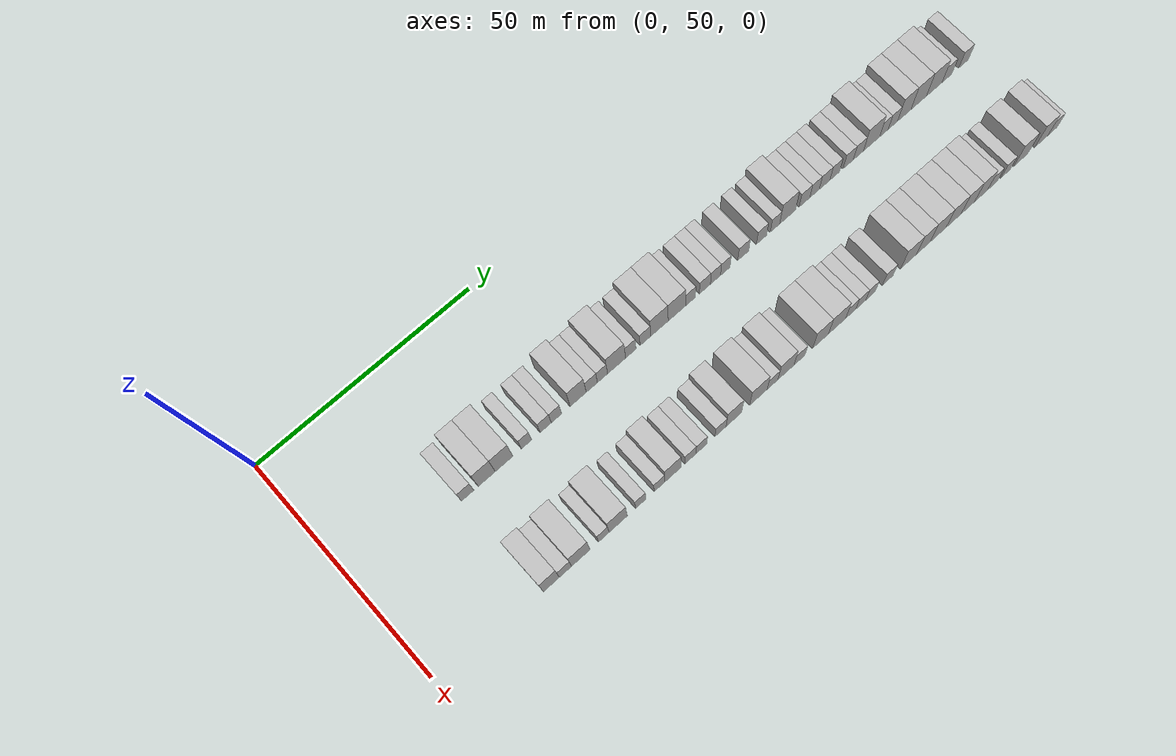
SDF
<sdf version="1.6">
 <world name="default">
  <model name="building_66">
   <static>1</static>
   <pose>25.0000 74.7468 0 0.000000 0.000000 0.000000</pose>
   <link name="link">
    <pose>0 0 3.00 0 0 0</pose>
    <collision name="collision"><geometry><box><size>10.0000 2.9044 6.0000</size></box></geometry></collision>
    <visual name="visual">
     <cast_shadows>0</cast_shadows>
     <geometry><box><size>10.0000 2.9044 6.0000</size></box></geometry>
     <material>
      <script>
       <uri>model://HANNAS_wall/materials/scripts</uri>
       <uri>model://HANNAS_wall/materials/textures</uri>
       <name>vrc/HANNAS_wall</name>
      </script>
     </material>
    </visual>
   </link>
  </model>
  <model name="building_67">
   <static>1</static>
   <pose>25.0000 79.1822 0 0.000000 0.000000 0.000000</pose>
   <link name="link">
    <pose>0 0 4.50 0 0 0</pose>
    <collision name="collision"><geometry><box><size>10.0000 3.9665 9.0000</size></box></geometry></collision>
    <visual name="visual">
     <cast_shadows>0</cast_shadows>
     <geometry><box><size>10.0000 3.9665 9.0000</size></box></geometry>
     <material>
      <script>
       <uri>model://HANNAS_wall/materials/scripts</uri>
       <uri>model://HANNAS_wall/materials/textures</uri>
       <name>vrc/HANNAS_wall</name>
      </script>
     </material>
    </visual>
   </link>
  </model>
  <model name="building_68">
   <static>1</static>
   <pose>25.0000 83.2486 0 0.000000 0.000000 0.000000</pose>
   <link name="link">
    <pose>0 0 4.50 0 0 0</pose>
    <collision name="collision"><geometry><box><size>10.0000 4.1663 9.0000</size></box></geometry></collision>
    <visual name="visual">
     <cast_shadows>0</cast_shadows>
     <geometry><box><size>10.0000 4.1663 9.0000</size></box></geometry>
     <material>
      <script>
       <uri>model://HANNAS_wall/materials/scripts</uri>
       <uri>model://HANNAS_wall/materials/textures</uri>
       <name>vrc/HANNAS_wall</name>
      </script>
     </material>
    </visual>
   </link>
  </model>
  <model name="building_69">
   <static>1</static>
   <pose>25.0000 88.5705 0 0.000000 0.000000 0.000000</pose>
   <link name="link">
    <pose>0 0 3.00 0 0 0</pose>
    <collision name="collision"><geometry><box><size>10.0000 2.4775 6.0000</size></box></geometry></collision>
    <visual name="visual">
     <cast_shadows>0</cast_shadows>
     <geometry><box><size>10.0000 2.4775 6.0000</size></box></geometry>
     <material>
      <script>
       <uri>model://HANNAS_wall/materials/scripts</uri>
       <uri>model://HANNAS_wall/materials/textures</uri>
       <name>vrc/HANNAS_wall</name>
      </script>
     </material>
    </visual>
   </link>
  </model>
  <model name="building_70">
   <static>1</static>
   <pose>25.0000 93.1546 0 0.000000 0.000000 0.000000</pose>
   <link name="link">
    <pose>0 0 3.00 0 0 0</pose>
    <collision name="collision"><geometry><box><size>10.0000 2.6907 6.0000</size></box></geometry></collision>
    <visual name="visual">
     <cast_shadows>0</cast_shadows>
     <geometry><box><size>10.0000 2.6907 6.0000</size></box></geometry>
     <material>
      <script>
       <uri>model://HANNAS_wall/materials/scripts</uri>
       <uri>model://HANNAS_wall/materials/textures</uri>
       <name>vrc/HANNAS_wall</name>
      </script>
     </material>
    </visual>
   </link>
  </model>
  <model name="building_71">
   <static>1</static>
   <pose>25.0000 95.7570 0 0.000000 0.000000 0.000000</pose>
   <link name="link">
    <pose>0 0 3.00 0 0 0</pose>
    <collision name="collision"><geometry><box><size>10.0000 2.5140 6.0000</size></box></geometry></collision>
    <visual name="visual">
     <cast_shadows>0</cast_shadows>
     <geometry><box><size>10.0000 2.5140 6.0000</size></box></geometry>
     <material>
      <script>
       <uri>model://HANNAS_wall/materials/scripts</uri>
       <uri>model://HANNAS_wall/materials/textures</uri>
       <name>vrc/HANNAS_wall</name>
      </script>
     </material>
    </visual>
   </link>
  </model>
  <model name="building_72">
   <static>1</static>
   <pose>25.0000 100.9789 0 0.000000 0.000000 0.000000</pose>
   <link name="link">
    <pose>0 0 4.50 0 0 0</pose>
    <collision name="collision"><geometry><box><size>10.0000 3.9297 9.0000</size></box></geometry></collision>
    <visual name="visual">
     <cast_shadows>0</cast_shadows>
     <geometry><box><size>10.0000 3.9297 9.0000</size></box></geometry>
     <material>
      <script>
       <uri>model://HANNAS_wall/materials/scripts</uri>
       <uri>model://HANNAS_wall/materials/textures</uri>
       <name>vrc/HANNAS_wall</name>
      </script>
     </material>
    </visual>
   </link>
  </model>
  <model name="building_73">
   <static>1</static>
   <pose>25.0000 104.3171 0 0.000000 0.000000 0.000000</pose>
   <link name="link">
    <pose>0 0 3.00 0 0 0</pose>
    <collision name="collision"><geometry><box><size>10.0000 2.7467 6.0000</size></box></geometry></collision>
    <visual name="visual">
     <cast_shadows>0</cast_shadows>
     <geometry><box><size>10.0000 2.7467 6.0000</size></box></geometry>
     <material>
      <script>
       <uri>model://HANNAS_wall/materials/scripts</uri>
       <uri>model://HANNAS_wall/materials/textures</uri>
       <name>vrc/HANNAS_wall</name>
      </script>
     </material>
    </visual>
   </link>
  </model>
  <model name="building_74">
   <static>1</static>
   <pose>25.0000 106.9308 0 0.000000 0.000000 0.000000</pose>
   <link name="link">
    <pose>0 0 3.00 0 0 0</pose>
    <collision name="collision"><geometry><box><size>10.0000 2.4807 6.0000</size></box></geometry></collision>
    <visual name="visual">
     <cast_shadows>0</cast_shadows>
     <geometry><box><size>10.0000 2.4807 6.0000</size></box></geometry>
     <material>
      <script>
       <uri>model://HANNAS_wall/materials/scripts</uri>
       <uri>model://HANNAS_wall/materials/textures</uri>
       <name>vrc/HANNAS_wall</name>
      </script>
     </material>
    </visual>
   </link>
  </model>
  <model name="building_75">
   <static>1</static>
   <pose>25.0000 110.3880 0 0.000000 0.000000 0.000000</pose>
   <link name="link">
    <pose>0 0 4.50 0 0 0</pose>
    <collision name="collision"><geometry><box><size>10.0000 4.4338 9.0000</size></box></geometry></collision>
    <visual name="visual">
     <cast_shadows>0</cast_shadows>
     <geometry><box><size>10.0000 4.4338 9.0000</size></box></geometry>
     <material>
      <script>
       <uri>model://HANNAS_wall/materials/scripts</uri>
       <uri>model://HANNAS_wall/materials/textures</uri>
       <name>vrc/HANNAS_wall</name>
      </script>
     </material>
    </visual>
   </link>
  </model>
  <model name="building_76">
   <static>1</static>
   <pose>25.0000 113.9104 0 0.000000 0.000000 0.000000</pose>
   <link name="link">
    <pose>0 0 3.00 0 0 0</pose>
    <collision name="collision"><geometry><box><size>10.0000 2.6109 6.0000</size></box></geometry></collision>
    <visual name="visual">
     <cast_shadows>0</cast_shadows>
     <geometry><box><size>10.0000 2.6109 6.0000</size></box></geometry>
     <material>
      <script>
       <uri>model://HANNAS_wall/materials/scripts</uri>
       <uri>model://HANNAS_wall/materials/textures</uri>
       <name>vrc/HANNAS_wall</name>
      </script>
     </material>
    </visual>
   </link>
  </model>
  <model name="building_77">
   <static>1</static>
   <pose>25.0000 117.5354 0 0.000000 0.000000 0.000000</pose>
   <link name="link">
    <pose>0 0 3.00 0 0 0</pose>
    <collision name="collision"><geometry><box><size>10.0000 2.6390 6.0000</size></box></geometry></collision>
    <visual name="visual">
     <cast_shadows>0</cast_shadows>
     <geometry><box><size>10.0000 2.6390 6.0000</size></box></geometry>
     <material>
      <script>
       <uri>model://HANNAS_wall/materials/scripts</uri>
       <uri>model://HANNAS_wall/materials/textures</uri>
       <name>vrc/HANNAS_wall</name>
      </script>
     </material>
    </visual>
   </link>
  </model>
  <model name="building_78">
   <static>1</static>
   <pose>25.0000 121.0596 0 0.000000 0.000000 0.000000</pose>
   <link name="link">
    <pose>0 0 4.50 0 0 0</pose>
    <collision name="collision"><geometry><box><size>10.0000 4.4094 9.0000</size></box></geometry></collision>
    <visual name="visual">
     <cast_shadows>0</cast_shadows>
     <geometry><box><size>10.0000 4.4094 9.0000</size></box></geometry>
     <material>
      <script>
       <uri>model://HANNAS_wall/materials/scripts</uri>
       <uri>model://HANNAS_wall/materials/textures</uri>
       <name>vrc/HANNAS_wall</name>
      </script>
     </material>
    </visual>
   </link>
  </model>
  <model name="building_79">
   <static>1</static>
   <pose>25.0000 125.4684 0 0.000000 0.000000 0.000000</pose>
   <link name="link">
    <pose>0 0 4.50 0 0 0</pose>
    <collision name="collision"><geometry><box><size>10.0000 4.4081 9.0000</size></box></geometry></collision>
    <visual name="visual">
     <cast_shadows>0</cast_shadows>
     <geometry><box><size>10.0000 4.4081 9.0000</size></box></geometry>
     <material>
      <script>
       <uri>model://HANNAS_wall/materials/scripts</uri>
       <uri>model://HANNAS_wall/materials/textures</uri>
       <name>vrc/HANNAS_wall</name>
      </script>
     </material>
    </visual>
   </link>
  </model>
  <model name="building_80">
   <static>1</static>
   <pose>25.0000 128.9267 0 0.000000 0.000000 0.000000</pose>
   <link name="link">
    <pose>0 0 3.00 0 0 0</pose>
    <collision name="collision"><geometry><box><size>10.0000 2.5086 6.0000</size></box></geometry></collision>
    <visual name="visual">
     <cast_shadows>0</cast_shadows>
     <geometry><box><size>10.0000 2.5086 6.0000</size></box></geometry>
     <material>
      <script>
       <uri>model://HANNAS_wall/materials/scripts</uri>
       <uri>model://HANNAS_wall/materials/textures</uri>
       <name>vrc/HANNAS_wall</name>
      </script>
     </material>
    </visual>
   </link>
  </model>
  <model name="building_81">
   <static>1</static>
   <pose>25.0000 132.6072 0 0.000000 0.000000 0.000000</pose>
   <link name="link">
    <pose>0 0 3.00 0 0 0</pose>
    <collision name="collision"><geometry><box><size>10.0000 2.8524 6.0000</size></box></geometry></collision>
    <visual name="visual">
     <cast_shadows>0</cast_shadows>
     <geometry><box><size>10.0000 2.8524 6.0000</size></box></geometry>
     <material>
      <script>
       <uri>model://HANNAS_wall/materials/scripts</uri>
       <uri>model://HANNAS_wall/materials/textures</uri>
       <name>vrc/HANNAS_wall</name>
      </script>
     </material>
    </visual>
   </link>
  </model>
  <model name="building_82">
   <static>1</static>
   <pose>25.0000 135.3278 0 0.000000 0.000000 0.000000</pose>
   <link name="link">
    <pose>0 0 3.00 0 0 0</pose>
    <collision name="collision"><geometry><box><size>10.0000 2.5889 6.0000</size></box></geometry></collision>
    <visual name="visual">
     <cast_shadows>0</cast_shadows>
     <geometry><box><size>10.0000 2.5889 6.0000</size></box></geometry>
     <material>
      <script>
       <uri>model://HANNAS_wall/materials/scripts</uri>
       <uri>model://HANNAS_wall/materials/textures</uri>
       <name>vrc/HANNAS_wall</name>
      </script>
     </material>
    </visual>
   </link>
  </model>
  <model name="building_83">
   <static>1</static>
   <pose>25.0000 137.8538 0 0.000000 0.000000 0.000000</pose>
   <link name="link">
    <pose>0 0 3.00 0 0 0</pose>
    <collision name="collision"><geometry><box><size>10.0000 2.4631 6.0000</size></box></geometry></collision>
    <visual name="visual">
     <cast_shadows>0</cast_shadows>
     <geometry><box><size>10.0000 2.4631 6.0000</size></box></geometry>
     <material>
      <script>
       <uri>model://HANNAS_wall/materials/scripts</uri>
       <uri>model://HANNAS_wall/materials/textures</uri>
       <name>vrc/HANNAS_wall</name>
      </script>
     </material>
    </visual>
   </link>
  </model>
  <model name="building_84">
   <static>1</static>
   <pose>25.0000 142.5215 0 0.000000 0.000000 0.000000</pose>
   <link name="link">
    <pose>0 0 3.00 0 0 0</pose>
    <collision name="collision"><geometry><box><size>10.0000 2.8722 6.0000</size></box></geometry></collision>
    <visual name="visual">
     <cast_shadows>0</cast_shadows>
     <geometry><box><size>10.0000 2.8722 6.0000</size></box></geometry>
     <material>
      <script>
       <uri>model://HANNAS_wall/materials/scripts</uri>
       <uri>model://HANNAS_wall/materials/textures</uri>
       <name>vrc/HANNAS_wall</name>
      </script>
     </material>
    </visual>
   </link>
  </model>
  <model name="building_85">
   <static>1</static>
   <pose>25.0000 147.2923 0 0.000000 0.000000 0.000000</pose>
   <link name="link">
    <pose>0 0 3.00 0 0 0</pose>
    <collision name="collision"><geometry><box><size>10.0000 2.6695 6.0000</size></box></geometry></collision>
    <visual name="visual">
     <cast_shadows>0</cast_shadows>
     <geometry><box><size>10.0000 2.6695 6.0000</size></box></geometry>
     <material>
      <script>
       <uri>model://HANNAS_wall/materials/scripts</uri>
       <uri>model://HANNAS_wall/materials/textures</uri>
       <name>vrc/HANNAS_wall</name>
      </script>
     </material>
    </visual>
   </link>
  </model>
  <model name="building_86">
   <static>1</static>
   <pose>25.0000 150.8639 0 0.000000 0.000000 0.000000</pose>
   <link name="link">
    <pose>0 0 3.00 0 0 0</pose>
    <collision name="collision"><geometry><box><size>10.0000 2.4738 6.0000</size></box></geometry></collision>
    <visual name="visual">
     <cast_shadows>0</cast_shadows>
     <geometry><box><size>10.0000 2.4738 6.0000</size></box></geometry>
     <material>
      <script>
       <uri>model://HANNAS_wall/materials/scripts</uri>
       <uri>model://HANNAS_wall/materials/textures</uri>
       <name>vrc/HANNAS_wall</name>
      </script>
     </material>
    </visual>
   </link>
  </model>
  <model name="building_87">
   <static>1</static>
   <pose>25.0000 154.1984 0 0.000000 0.000000 0.000000</pose>
   <link name="link">
    <pose>0 0 4.50 0 0 0</pose>
    <collision name="collision"><geometry><box><size>10.0000 4.1952 9.0000</size></box></geometry></collision>
    <visual name="visual">
     <cast_shadows>0</cast_shadows>
     <geometry><box><size>10.0000 4.1952 9.0000</size></box></geometry>
     <material>
      <script>
       <uri>model://HANNAS_wall/materials/scripts</uri>
       <uri>model://HANNAS_wall/materials/textures</uri>
       <name>vrc/HANNAS_wall</name>
      </script>
     </material>
    </visual>
   </link>
  </model>
  <model name="building_88">
   <static>1</static>
   <pose>25.0000 158.7002 0 0.000000 0.000000 0.000000</pose>
   <link name="link">
    <pose>0 0 3.00 0 0 0</pose>
    <collision name="collision"><geometry><box><size>10.0000 2.8086 6.0000</size></box></geometry></collision>
    <visual name="visual">
     <cast_shadows>0</cast_shadows>
     <geometry><box><size>10.0000 2.8086 6.0000</size></box></geometry>
     <material>
      <script>
       <uri>model://HANNAS_wall/materials/scripts</uri>
       <uri>model://HANNAS_wall/materials/textures</uri>
       <name>vrc/HANNAS_wall</name>
      </script>
     </material>
    </visual>
   </link>
  </model>
  <model name="building_89">
   <static>1</static>
   <pose>25.0000 161.3780 0 0.000000 0.000000 0.000000</pose>
   <link name="link">
    <pose>0 0 3.00 0 0 0</pose>
    <collision name="collision"><geometry><box><size>10.0000 2.5471 6.0000</size></box></geometry></collision>
    <visual name="visual">
     <cast_shadows>0</cast_shadows>
     <geometry><box><size>10.0000 2.5471 6.0000</size></box></geometry>
     <material>
      <script>
       <uri>model://HANNAS_wall/materials/scripts</uri>
       <uri>model://HANNAS_wall/materials/textures</uri>
       <name>vrc/HANNAS_wall</name>
      </script>
     </material>
    </visual>
   </link>
  </model>
  <model name="building_90">
   <static>1</static>
   <pose>25.0000 164.1032 0 0.000000 0.000000 0.000000</pose>
   <link name="link">
    <pose>0 0 3.00 0 0 0</pose>
    <collision name="collision"><geometry><box><size>10.0000 2.9033 6.0000</size></box></geometry></collision>
    <visual name="visual">
     <cast_shadows>0</cast_shadows>
     <geometry><box><size>10.0000 2.9033 6.0000</size></box></geometry>
     <material>
      <script>
       <uri>model://HANNAS_wall/materials/scripts</uri>
       <uri>model://HANNAS_wall/materials/textures</uri>
       <name>vrc/HANNAS_wall</name>
      </script>
     </material>
    </visual>
   </link>
  </model>
  <model name="building_91">
   <static>1</static>
   <pose>25.0000 166.8513 0 0.000000 0.000000 0.000000</pose>
   <link name="link">
    <pose>0 0 3.00 0 0 0</pose>
    <collision name="collision"><geometry><box><size>10.0000 2.5929 6.0000</size></box></geometry></collision>
    <visual name="visual">
     <cast_shadows>0</cast_shadows>
     <geometry><box><size>10.0000 2.5929 6.0000</size></box></geometry>
     <material>
      <script>
       <uri>model://HANNAS_wall/materials/scripts</uri>
       <uri>model://HANNAS_wall/materials/textures</uri>
       <name>vrc/HANNAS_wall</name>
      </script>
     </material>
    </visual>
   </link>
  </model>
  <model name="building_92">
   <static>1</static>
   <pose>25.0000 170.5384 0 0.000000 0.000000 0.000000</pose>
   <link name="link">
    <pose>0 0 3.00 0 0 0</pose>
    <collision name="collision"><geometry><box><size>10.0000 2.7811 6.0000</size></box></geometry></collision>
    <visual name="visual">
     <cast_shadows>0</cast_shadows>
     <geometry><box><size>10.0000 2.7811 6.0000</size></box></geometry>
     <material>
      <script>
       <uri>model://HANNAS_wall/materials/scripts</uri>
       <uri>model://HANNAS_wall/materials/textures</uri>
       <name>vrc/HANNAS_wall</name>
      </script>
     </material>
    </visual>
   </link>
  </model>
  <model name="building_93">
   <static>1</static>
   <pose>25.0000 173.3118 0 0.000000 0.000000 0.000000</pose>
   <link name="link">
    <pose>0 0 3.00 0 0 0</pose>
    <collision name="collision"><geometry><box><size>10.0000 2.7658 6.0000</size></box></geometry></collision>
    <visual name="visual">
     <cast_shadows>0</cast_shadows>
     <geometry><box><size>10.0000 2.7658 6.0000</size></box></geometry>
     <material>
      <script>
       <uri>model://HANNAS_wall/materials/scripts</uri>
       <uri>model://HANNAS_wall/materials/textures</uri>
       <name>vrc/HANNAS_wall</name>
      </script>
     </material>
    </visual>
   </link>
  </model>
  <model name="building_94">
   <static>1</static>
   <pose>25.0000 176.9208 0 0.000000 0.000000 0.000000</pose>
   <link name="link">
    <pose>0 0 4.50 0 0 0</pose>
    <collision name="collision"><geometry><box><size>10.0000 4.4520 9.0000</size></box></geometry></collision>
    <visual name="visual">
     <cast_shadows>0</cast_shadows>
     <geometry><box><size>10.0000 4.4520 9.0000</size></box></geometry>
     <material>
      <script>
       <uri>model://HANNAS_wall/materials/scripts</uri>
       <uri>model://HANNAS_wall/materials/textures</uri>
       <name>vrc/HANNAS_wall</name>
      </script>
     </material>
    </visual>
   </link>
  </model>
  <model name="building_95">
   <static>1</static>
   <pose>25.0000 180.3477 0 0.000000 0.000000 0.000000</pose>
   <link name="link">
    <pose>0 0 3.00 0 0 0</pose>
    <collision name="collision"><geometry><box><size>10.0000 2.4019 6.0000</size></box></geometry></collision>
    <visual name="visual">
     <cast_shadows>0</cast_shadows>
     <geometry><box><size>10.0000 2.4019 6.0000</size></box></geometry>
     <material>
      <script>
       <uri>model://HANNAS_wall/materials/scripts</uri>
       <uri>model://HANNAS_wall/materials/textures</uri>
       <name>vrc/HANNAS_wall</name>
      </script>
     </material>
    </visual>
   </link>
  </model>
  <model name="building_96">
   <static>1</static>
   <pose>25.0000 182.8537 0 0.000000 0.000000 0.000000</pose>
   <link name="link">
    <pose>0 0 3.00 0 0 0</pose>
    <collision name="collision"><geometry><box><size>10.0000 2.6103 6.0000</size></box></geometry></collision>
    <visual name="visual">
     <cast_shadows>0</cast_shadows>
     <geometry><box><size>10.0000 2.6103 6.0000</size></box></geometry>
     <material>
      <script>
       <uri>model://HANNAS_wall/materials/scripts</uri>
       <uri>model://HANNAS_wall/materials/textures</uri>
       <name>vrc/HANNAS_wall</name>
      </script>
     </material>
    </visual>
   </link>
  </model>
  <model name="building_97">
   <static>1</static>
   <pose>25.0000 186.0379 0 0.000000 0.000000 0.000000</pose>
   <link name="link">
    <pose>0 0 4.50 0 0 0</pose>
    <collision name="collision"><geometry><box><size>10.0000 3.7581 9.0000</size></box></geometry></collision>
    <visual name="visual">
     <cast_shadows>0</cast_shadows>
     <geometry><box><size>10.0000 3.7581 9.0000</size></box></geometry>
     <material>
      <script>
       <uri>model://HANNAS_wall/materials/scripts</uri>
       <uri>model://HANNAS_wall/materials/textures</uri>
       <name>vrc/HANNAS_wall</name>
      </script>
     </material>
    </visual>
   </link>
  </model>
  <model name="building_98">
   <static>1</static>
   <pose>25.0000 190.1003 0 0.000000 0.000000 0.000000</pose>
   <link name="link">
    <pose>0 0 4.50 0 0 0</pose>
    <collision name="collision"><geometry><box><size>10.0000 4.3667 9.0000</size></box></geometry></collision>
    <visual name="visual">
     <cast_shadows>0</cast_shadows>
     <geometry><box><size>10.0000 4.3667 9.0000</size></box></geometry>
     <material>
      <script>
       <uri>model://HANNAS_wall/materials/scripts</uri>
       <uri>model://HANNAS_wall/materials/textures</uri>
       <name>vrc/HANNAS_wall</name>
      </script>
     </material>
    </visual>
   </link>
  </model>
  <model name="building_99">
   <static>1</static>
   <pose>25.0000 194.4978 0 0.000000 0.000000 0.000000</pose>
   <link name="link">
    <pose>0 0 4.50 0 0 0</pose>
    <collision name="collision"><geometry><box><size>10.0000 4.4283 9.0000</size></box></geometry></collision>
    <visual name="visual">
     <cast_shadows>0</cast_shadows>
     <geometry><box><size>10.0000 4.4283 9.0000</size></box></geometry>
     <material>
      <script>
       <uri>model://HANNAS_wall/materials/scripts</uri>
       <uri>model://HANNAS_wall/materials/textures</uri>
       <name>vrc/HANNAS_wall</name>
      </script>
     </material>
    </visual>
   </link>
  </model>
  <model name="building_100">
   <static>1</static>
   <pose>25.0000 198.1069 0 0.000000 0.000000 0.000000</pose>
   <link name="link">
    <pose>0 0 3.00 0 0 0</pose>
    <collision name="collision"><geometry><box><size>10.0000 2.7899 6.0000</size></box></geometry></collision>
    <visual name="visual">
     <cast_shadows>0</cast_shadows>
     <geometry><box><size>10.0000 2.7899 6.0000</size></box></geometry>
     <material>
      <script>
       <uri>model://HANNAS_wall/materials/scripts</uri>
       <uri>model://HANNAS_wall/materials/textures</uri>
       <name>vrc/HANNAS_wall</name>
      </script>
     </material>
    </visual>
   </link>
  </model>
  <model name="building_101">
   <static>1</static>
   <pose>25.0000 202.8873 0 0.000000 0.000000 0.000000</pose>
   <link name="link">
    <pose>0 0 3.00 0 0 0</pose>
    <collision name="collision"><geometry><box><size>10.0000 2.7710 6.0000</size></box></geometry></collision>
    <visual name="visual">
     <cast_shadows>0</cast_shadows>
     <geometry><box><size>10.0000 2.7710 6.0000</size></box></geometry>
     <material>
      <script>
       <uri>model://HANNAS_wall/materials/scripts</uri>
       <uri>model://HANNAS_wall/materials/textures</uri>
       <name>vrc/HANNAS_wall</name>
      </script>
     </material>
    </visual>
   </link>
  </model>
  <model name="building_174">
   <static>1</static>
   <pose>47.0000 75.4648 0 0.000000 0.000000 0.000000</pose>
   <link name="link">
    <pose>0 0 4.50 0 0 0</pose>
    <collision name="collision"><geometry><box><size>10.0000 3.6805 9.0000</size></box></geometry></collision>
    <visual name="visual">
     <cast_shadows>0</cast_shadows>
     <geometry><box><size>10.0000 3.6805 9.0000</size></box></geometry>
     <material>
      <script>
       <uri>model://HANNAS_wall/materials/scripts</uri>
       <uri>model://HANNAS_wall/materials/textures</uri>
       <name>vrc/HANNAS_wall</name>
      </script>
     </material>
    </visual>
   </link>
  </model>
  <model name="building_175">
   <static>1</static>
   <pose>47.0000 78.7198 0 0.000000 0.000000 0.000000</pose>
   <link name="link">
    <pose>0 0 3.00 0 0 0</pose>
    <collision name="collision"><geometry><box><size>10.0000 2.8295 6.0000</size></box></geometry></collision>
    <visual name="visual">
     <cast_shadows>0</cast_shadows>
     <geometry><box><size>10.0000 2.8295 6.0000</size></box></geometry>
     <material>
      <script>
       <uri>model://HANNAS_wall/materials/scripts</uri>
       <uri>model://HANNAS_wall/materials/textures</uri>
       <name>vrc/HANNAS_wall</name>
      </script>
     </material>
    </visual>
   </link>
  </model>
  <model name="building_176">
   <static>1</static>
   <pose>47.0000 82.2916 0 0.000000 0.000000 0.000000</pose>
   <link name="link">
    <pose>0 0 4.50 0 0 0</pose>
    <collision name="collision"><geometry><box><size>10.0000 4.3142 9.0000</size></box></geometry></collision>
    <visual name="visual">
     <cast_shadows>0</cast_shadows>
     <geometry><box><size>10.0000 4.3142 9.0000</size></box></geometry>
     <material>
      <script>
       <uri>model://HANNAS_wall/materials/scripts</uri>
       <uri>model://HANNAS_wall/materials/textures</uri>
       <name>vrc/HANNAS_wall</name>
      </script>
     </material>
    </visual>
   </link>
  </model>
  <model name="building_177">
   <static>1</static>
   <pose>47.0000 87.6929 0 0.000000 0.000000 0.000000</pose>
   <link name="link">
    <pose>0 0 3.00 0 0 0</pose>
    <collision name="collision"><geometry><box><size>10.0000 2.4883 6.0000</size></box></geometry></collision>
    <visual name="visual">
     <cast_shadows>0</cast_shadows>
     <geometry><box><size>10.0000 2.4883 6.0000</size></box></geometry>
     <material>
      <script>
       <uri>model://HANNAS_wall/materials/scripts</uri>
       <uri>model://HANNAS_wall/materials/textures</uri>
       <name>vrc/HANNAS_wall</name>
      </script>
     </material>
    </visual>
   </link>
  </model>
  <model name="building_178">
   <static>1</static>
   <pose>47.0000 91.1076 0 0.000000 0.000000 0.000000</pose>
   <link name="link">
    <pose>0 0 4.50 0 0 0</pose>
    <collision name="collision"><geometry><box><size>10.0000 4.3410 9.0000</size></box></geometry></collision>
    <visual name="visual">
     <cast_shadows>0</cast_shadows>
     <geometry><box><size>10.0000 4.3410 9.0000</size></box></geometry>
     <material>
      <script>
       <uri>model://HANNAS_wall/materials/scripts</uri>
       <uri>model://HANNAS_wall/materials/textures</uri>
       <name>vrc/HANNAS_wall</name>
      </script>
     </material>
    </visual>
   </link>
  </model>
  <model name="building_179">
   <static>1</static>
   <pose>47.0000 96.5016 0 0.000000 0.000000 0.000000</pose>
   <link name="link">
    <pose>0 0 3.00 0 0 0</pose>
    <collision name="collision"><geometry><box><size>10.0000 2.4472 6.0000</size></box></geometry></collision>
    <visual name="visual">
     <cast_shadows>0</cast_shadows>
     <geometry><box><size>10.0000 2.4472 6.0000</size></box></geometry>
     <material>
      <script>
       <uri>model://HANNAS_wall/materials/scripts</uri>
       <uri>model://HANNAS_wall/materials/textures</uri>
       <name>vrc/HANNAS_wall</name>
      </script>
     </material>
    </visual>
   </link>
  </model>
  <model name="building_180">
   <static>1</static>
   <pose>47.0000 101.0197 0 0.000000 0.000000 0.000000</pose>
   <link name="link">
    <pose>0 0 3.00 0 0 0</pose>
    <collision name="collision"><geometry><box><size>10.0000 2.5891 6.0000</size></box></geometry></collision>
    <visual name="visual">
     <cast_shadows>0</cast_shadows>
     <geometry><box><size>10.0000 2.5891 6.0000</size></box></geometry>
     <material>
      <script>
       <uri>model://HANNAS_wall/materials/scripts</uri>
       <uri>model://HANNAS_wall/materials/textures</uri>
       <name>vrc/HANNAS_wall</name>
      </script>
     </material>
    </visual>
   </link>
  </model>
  <model name="building_181">
   <static>1</static>
   <pose>47.0000 104.2521 0 0.000000 0.000000 0.000000</pose>
   <link name="link">
    <pose>0 0 4.50 0 0 0</pose>
    <collision name="collision"><geometry><box><size>10.0000 3.8757 9.0000</size></box></geometry></collision>
    <visual name="visual">
     <cast_shadows>0</cast_shadows>
     <geometry><box><size>10.0000 3.8757 9.0000</size></box></geometry>
     <material>
      <script>
       <uri>model://HANNAS_wall/materials/scripts</uri>
       <uri>model://HANNAS_wall/materials/textures</uri>
       <name>vrc/HANNAS_wall</name>
      </script>
     </material>
    </visual>
   </link>
  </model>
  <model name="building_182">
   <static>1</static>
   <pose>47.0000 108.5482 0 0.000000 0.000000 0.000000</pose>
   <link name="link">
    <pose>0 0 3.00 0 0 0</pose>
    <collision name="collision"><geometry><box><size>10.0000 2.7164 6.0000</size></box></geometry></collision>
    <visual name="visual">
     <cast_shadows>0</cast_shadows>
     <geometry><box><size>10.0000 2.7164 6.0000</size></box></geometry>
     <material>
      <script>
       <uri>model://HANNAS_wall/materials/scripts</uri>
       <uri>model://HANNAS_wall/materials/textures</uri>
       <name>vrc/HANNAS_wall</name>
      </script>
     </material>
    </visual>
   </link>
  </model>
  <model name="building_183">
   <static>1</static>
   <pose>47.0000 111.2435 0 0.000000 0.000000 0.000000</pose>
   <link name="link">
    <pose>0 0 3.00 0 0 0</pose>
    <collision name="collision"><geometry><box><size>10.0000 2.6744 6.0000</size></box></geometry></collision>
    <visual name="visual">
     <cast_shadows>0</cast_shadows>
     <geometry><box><size>10.0000 2.6744 6.0000</size></box></geometry>
     <material>
      <script>
       <uri>model://HANNAS_wall/materials/scripts</uri>
       <uri>model://HANNAS_wall/materials/textures</uri>
       <name>vrc/HANNAS_wall</name>
      </script>
     </material>
    </visual>
   </link>
  </model>
  <model name="building_184">
   <static>1</static>
   <pose>47.0000 115.9707 0 0.000000 0.000000 0.000000</pose>
   <link name="link">
    <pose>0 0 3.00 0 0 0</pose>
    <collision name="collision"><geometry><box><size>10.0000 2.7801 6.0000</size></box></geometry></collision>
    <visual name="visual">
     <cast_shadows>0</cast_shadows>
     <geometry><box><size>10.0000 2.7801 6.0000</size></box></geometry>
     <material>
      <script>
       <uri>model://HANNAS_wall/materials/scripts</uri>
       <uri>model://HANNAS_wall/materials/textures</uri>
       <name>vrc/HANNAS_wall</name>
      </script>
     </material>
    </visual>
   </link>
  </model>
  <model name="building_185">
   <static>1</static>
   <pose>47.0000 119.3049 0 0.000000 0.000000 0.000000</pose>
   <link name="link">
    <pose>0 0 4.50 0 0 0</pose>
    <collision name="collision"><geometry><box><size>10.0000 3.8882 9.0000</size></box></geometry></collision>
    <visual name="visual">
     <cast_shadows>0</cast_shadows>
     <geometry><box><size>10.0000 3.8882 9.0000</size></box></geometry>
     <material>
      <script>
       <uri>model://HANNAS_wall/materials/scripts</uri>
       <uri>model://HANNAS_wall/materials/textures</uri>
       <name>vrc/HANNAS_wall</name>
      </script>
     </material>
    </visual>
   </link>
  </model>
  <model name="building_186">
   <static>1</static>
   <pose>47.0000 125.4499 0 0.000000 0.000000 0.000000</pose>
   <link name="link">
    <pose>0 0 4.50 0 0 0</pose>
    <collision name="collision"><geometry><box><size>10.0000 4.4019 9.0000</size></box></geometry></collision>
    <visual name="visual">
     <cast_shadows>0</cast_shadows>
     <geometry><box><size>10.0000 4.4019 9.0000</size></box></geometry>
     <material>
      <script>
       <uri>model://HANNAS_wall/materials/scripts</uri>
       <uri>model://HANNAS_wall/materials/textures</uri>
       <name>vrc/HANNAS_wall</name>
      </script>
     </material>
    </visual>
   </link>
  </model>
  <model name="building_187">
   <static>1</static>
   <pose>47.0000 129.0130 0 0.000000 0.000000 0.000000</pose>
   <link name="link">
    <pose>0 0 3.00 0 0 0</pose>
    <collision name="collision"><geometry><box><size>10.0000 2.7242 6.0000</size></box></geometry></collision>
    <visual name="visual">
     <cast_shadows>0</cast_shadows>
     <geometry><box><size>10.0000 2.7242 6.0000</size></box></geometry>
     <material>
      <script>
       <uri>model://HANNAS_wall/materials/scripts</uri>
       <uri>model://HANNAS_wall/materials/textures</uri>
       <name>vrc/HANNAS_wall</name>
      </script>
     </material>
    </visual>
   </link>
  </model>
  <model name="building_188">
   <static>1</static>
   <pose>47.0000 132.4489 0 0.000000 0.000000 0.000000</pose>
   <link name="link">
    <pose>0 0 4.50 0 0 0</pose>
    <collision name="collision"><geometry><box><size>10.0000 4.1476 9.0000</size></box></geometry></collision>
    <visual name="visual">
     <cast_shadows>0</cast_shadows>
     <geometry><box><size>10.0000 4.1476 9.0000</size></box></geometry>
     <material>
      <script>
       <uri>model://HANNAS_wall/materials/scripts</uri>
       <uri>model://HANNAS_wall/materials/textures</uri>
       <name>vrc/HANNAS_wall</name>
      </script>
     </material>
    </visual>
   </link>
  </model>
  <model name="building_189">
   <static>1</static>
   <pose>47.0000 135.9162 0 0.000000 0.000000 0.000000</pose>
   <link name="link">
    <pose>0 0 3.00 0 0 0</pose>
    <collision name="collision"><geometry><box><size>10.0000 2.7870 6.0000</size></box></geometry></collision>
    <visual name="visual">
     <cast_shadows>0</cast_shadows>
     <geometry><box><size>10.0000 2.7870 6.0000</size></box></geometry>
     <material>
      <script>
       <uri>model://HANNAS_wall/materials/scripts</uri>
       <uri>model://HANNAS_wall/materials/textures</uri>
       <name>vrc/HANNAS_wall</name>
      </script>
     </material>
    </visual>
   </link>
  </model>
  <model name="building_190">
   <static>1</static>
   <pose>47.0000 141.3557 0 0.000000 0.000000 0.000000</pose>
   <link name="link">
    <pose>0 0 4.50 0 0 0</pose>
    <collision name="collision"><geometry><box><size>10.0000 4.0921 9.0000</size></box></geometry></collision>
    <visual name="visual">
     <cast_shadows>0</cast_shadows>
     <geometry><box><size>10.0000 4.0921 9.0000</size></box></geometry>
     <material>
      <script>
       <uri>model://HANNAS_wall/materials/scripts</uri>
       <uri>model://HANNAS_wall/materials/textures</uri>
       <name>vrc/HANNAS_wall</name>
      </script>
     </material>
    </visual>
   </link>
  </model>
  <model name="building_191">
   <static>1</static>
   <pose>47.0000 145.6403 0 0.000000 0.000000 0.000000</pose>
   <link name="link">
    <pose>0 0 4.50 0 0 0</pose>
    <collision name="collision"><geometry><box><size>10.0000 4.4772 9.0000</size></box></geometry></collision>
    <visual name="visual">
     <cast_shadows>0</cast_shadows>
     <geometry><box><size>10.0000 4.4772 9.0000</size></box></geometry>
     <material>
      <script>
       <uri>model://HANNAS_wall/materials/scripts</uri>
       <uri>model://HANNAS_wall/materials/textures</uri>
       <name>vrc/HANNAS_wall</name>
      </script>
     </material>
    </visual>
   </link>
  </model>
  <model name="building_192">
   <static>1</static>
   <pose>47.0000 149.2015 0 0.000000 0.000000 0.000000</pose>
   <link name="link">
    <pose>0 0 3.00 0 0 0</pose>
    <collision name="collision"><geometry><box><size>10.0000 2.6450 6.0000</size></box></geometry></collision>
    <visual name="visual">
     <cast_shadows>0</cast_shadows>
     <geometry><box><size>10.0000 2.6450 6.0000</size></box></geometry>
     <material>
      <script>
       <uri>model://HANNAS_wall/materials/scripts</uri>
       <uri>model://HANNAS_wall/materials/textures</uri>
       <name>vrc/HANNAS_wall</name>
      </script>
     </material>
    </visual>
   </link>
  </model>
  <model name="building_193">
   <static>1</static>
   <pose>47.0000 151.8546 0 0.000000 0.000000 0.000000</pose>
   <link name="link">
    <pose>0 0 3.00 0 0 0</pose>
    <collision name="collision"><geometry><box><size>10.0000 2.6612 6.0000</size></box></geometry></collision>
    <visual name="visual">
     <cast_shadows>0</cast_shadows>
     <geometry><box><size>10.0000 2.6612 6.0000</size></box></geometry>
     <material>
      <script>
       <uri>model://HANNAS_wall/materials/scripts</uri>
       <uri>model://HANNAS_wall/materials/textures</uri>
       <name>vrc/HANNAS_wall</name>
      </script>
     </material>
    </visual>
   </link>
  </model>
  <model name="building_194">
   <static>1</static>
   <pose>47.0000 154.4295 0 0.000000 0.000000 0.000000</pose>
   <link name="link">
    <pose>0 0 3.00 0 0 0</pose>
    <collision name="collision"><geometry><box><size>10.0000 2.4887 6.0000</size></box></geometry></collision>
    <visual name="visual">
     <cast_shadows>0</cast_shadows>
     <geometry><box><size>10.0000 2.4887 6.0000</size></box></geometry>
     <material>
      <script>
       <uri>model://HANNAS_wall/materials/scripts</uri>
       <uri>model://HANNAS_wall/materials/textures</uri>
       <name>vrc/HANNAS_wall</name>
      </script>
     </material>
    </visual>
   </link>
  </model>
  <model name="building_195">
   <static>1</static>
   <pose>47.0000 159.0996 0 0.000000 0.000000 0.000000</pose>
   <link name="link">
    <pose>0 0 3.00 0 0 0</pose>
    <collision name="collision"><geometry><box><size>10.0000 2.8515 6.0000</size></box></geometry></collision>
    <visual name="visual">
     <cast_shadows>0</cast_shadows>
     <geometry><box><size>10.0000 2.8515 6.0000</size></box></geometry>
     <material>
      <script>
       <uri>model://HANNAS_wall/materials/scripts</uri>
       <uri>model://HANNAS_wall/materials/textures</uri>
       <name>vrc/HANNAS_wall</name>
      </script>
     </material>
    </visual>
   </link>
  </model>
  <model name="building_196">
   <static>1</static>
   <pose>47.0000 164.6778 0 0.000000 0.000000 0.000000</pose>
   <link name="link">
    <pose>0 0 4.50 0 0 0</pose>
    <collision name="collision"><geometry><box><size>10.0000 4.3050 9.0000</size></box></geometry></collision>
    <visual name="visual">
     <cast_shadows>0</cast_shadows>
     <geometry><box><size>10.0000 4.3050 9.0000</size></box></geometry>
     <material>
      <script>
       <uri>model://HANNAS_wall/materials/scripts</uri>
       <uri>model://HANNAS_wall/materials/textures</uri>
       <name>vrc/HANNAS_wall</name>
      </script>
     </material>
    </visual>
   </link>
  </model>
  <model name="building_197">
   <static>1</static>
   <pose>47.0000 168.6406 0 0.000000 0.000000 0.000000</pose>
   <link name="link">
    <pose>0 0 4.50 0 0 0</pose>
    <collision name="collision"><geometry><box><size>10.0000 3.6206 9.0000</size></box></geometry></collision>
    <visual name="visual">
     <cast_shadows>0</cast_shadows>
     <geometry><box><size>10.0000 3.6206 9.0000</size></box></geometry>
     <material>
      <script>
       <uri>model://HANNAS_wall/materials/scripts</uri>
       <uri>model://HANNAS_wall/materials/textures</uri>
       <name>vrc/HANNAS_wall</name>
      </script>
     </material>
    </visual>
   </link>
  </model>
  <model name="building_198">
   <static>1</static>
   <pose>47.0000 172.6608 0 0.000000 0.000000 0.000000</pose>
   <link name="link">
    <pose>0 0 4.50 0 0 0</pose>
    <collision name="collision"><geometry><box><size>10.0000 4.4198 9.0000</size></box></geometry></collision>
    <visual name="visual">
     <cast_shadows>0</cast_shadows>
     <geometry><box><size>10.0000 4.4198 9.0000</size></box></geometry>
     <material>
      <script>
       <uri>model://HANNAS_wall/materials/scripts</uri>
       <uri>model://HANNAS_wall/materials/textures</uri>
       <name>vrc/HANNAS_wall</name>
      </script>
     </material>
    </visual>
   </link>
  </model>
  <model name="building_199">
   <static>1</static>
   <pose>47.0000 176.9204 0 0.000000 0.000000 0.000000</pose>
   <link name="link">
    <pose>0 0 4.50 0 0 0</pose>
    <collision name="collision"><geometry><box><size>10.0000 4.0994 9.0000</size></box></geometry></collision>
    <visual name="visual">
     <cast_shadows>0</cast_shadows>
     <geometry><box><size>10.0000 4.0994 9.0000</size></box></geometry>
     <material>
      <script>
       <uri>model://HANNAS_wall/materials/scripts</uri>
       <uri>model://HANNAS_wall/materials/textures</uri>
       <name>vrc/HANNAS_wall</name>
      </script>
     </material>
    </visual>
   </link>
  </model>
  <model name="building_200">
   <static>1</static>
   <pose>47.0000 180.8440 0 0.000000 0.000000 0.000000</pose>
   <link name="link">
    <pose>0 0 4.50 0 0 0</pose>
    <collision name="collision"><geometry><box><size>10.0000 3.7476 9.0000</size></box></geometry></collision>
    <visual name="visual">
     <cast_shadows>0</cast_shadows>
     <geometry><box><size>10.0000 3.7476 9.0000</size></box></geometry>
     <material>
      <script>
       <uri>model://HANNAS_wall/materials/scripts</uri>
       <uri>model://HANNAS_wall/materials/textures</uri>
       <name>vrc/HANNAS_wall</name>
      </script>
     </material>
    </visual>
   </link>
  </model>
  <model name="building_201">
   <static>1</static>
   <pose>47.0000 184.5349 0 0.000000 0.000000 0.000000</pose>
   <link name="link">
    <pose>0 0 4.50 0 0 0</pose>
    <collision name="collision"><geometry><box><size>10.0000 3.6343 9.0000</size></box></geometry></collision>
    <visual name="visual">
     <cast_shadows>0</cast_shadows>
     <geometry><box><size>10.0000 3.6343 9.0000</size></box></geometry>
     <material>
      <script>
       <uri>model://HANNAS_wall/materials/scripts</uri>
       <uri>model://HANNAS_wall/materials/textures</uri>
       <name>vrc/HANNAS_wall</name>
      </script>
     </material>
    </visual>
   </link>
  </model>
  <model name="building_202">
   <static>1</static>
   <pose>47.0000 187.7402 0 0.000000 0.000000 0.000000</pose>
   <link name="link">
    <pose>0 0 3.00 0 0 0</pose>
    <collision name="collision"><geometry><box><size>10.0000 2.7762 6.0000</size></box></geometry></collision>
    <visual name="visual">
     <cast_shadows>0</cast_shadows>
     <geometry><box><size>10.0000 2.7762 6.0000</size></box></geometry>
     <material>
      <script>
       <uri>model://HANNAS_wall/materials/scripts</uri>
       <uri>model://HANNAS_wall/materials/textures</uri>
       <name>vrc/HANNAS_wall</name>
      </script>
     </material>
    </visual>
   </link>
  </model>
  <model name="building_203">
   <static>1</static>
   <pose>47.0000 191.4458 0 0.000000 0.000000 0.000000</pose>
   <link name="link">
    <pose>0 0 3.00 0 0 0</pose>
    <collision name="collision"><geometry><box><size>10.0000 2.6352 6.0000</size></box></geometry></collision>
    <visual name="visual">
     <cast_shadows>0</cast_shadows>
     <geometry><box><size>10.0000 2.6352 6.0000</size></box></geometry>
     <material>
      <script>
       <uri>model://HANNAS_wall/materials/scripts</uri>
       <uri>model://HANNAS_wall/materials/textures</uri>
       <name>vrc/HANNAS_wall</name>
      </script>
     </material>
    </visual>
   </link>
  </model>
  <model name="building_204">
   <static>1</static>
   <pose>47.0000 195.7793 0 0.000000 0.000000 0.000000</pose>
   <link name="link">
    <pose>0 0 4.50 0 0 0</pose>
    <collision name="collision"><geometry><box><size>10.0000 4.0318 9.0000</size></box></geometry></collision>
    <visual name="visual">
     <cast_shadows>0</cast_shadows>
     <geometry><box><size>10.0000 4.0318 9.0000</size></box></geometry>
     <material>
      <script>
       <uri>model://HANNAS_wall/materials/scripts</uri>
       <uri>model://HANNAS_wall/materials/textures</uri>
       <name>vrc/HANNAS_wall</name>
      </script>
     </material>
    </visual>
   </link>
  </model>
  <model name="building_205">
   <static>1</static>
   <pose>47.0000 201.6755 0 0.000000 0.000000 0.000000</pose>
   <link name="link">
    <pose>0 0 4.50 0 0 0</pose>
    <collision name="collision"><geometry><box><size>10.0000 3.7605 9.0000</size></box></geometry></collision>
    <visual name="visual">
     <cast_shadows>0</cast_shadows>
     <geometry><box><size>10.0000 3.7605 9.0000</size></box></geometry>
     <material>
      <script>
       <uri>model://HANNAS_wall/materials/scripts</uri>
       <uri>model://HANNAS_wall/materials/textures</uri>
       <name>vrc/HANNAS_wall</name>
      </script>
     </material>
    </visual>
   </link>
  </model>
  <model name="building_206">
   <static>1</static>
   <pose>47.0000 204.9004 0 0.000000 0.000000 0.000000</pose>
   <link name="link">
    <pose>0 0 3.00 0 0 0</pose>
    <collision name="collision"><geometry><box><size>10.0000 2.6893 6.0000</size></box></geometry></collision>
    <visual name="visual">
     <cast_shadows>0</cast_shadows>
     <geometry><box><size>10.0000 2.6893 6.0000</size></box></geometry>
     <material>
      <script>
       <uri>model://HANNAS_wall/materials/scripts</uri>
       <uri>model://HANNAS_wall/materials/textures</uri>
       <name>vrc/HANNAS_wall</name>
      </script>
     </material>
    </visual>
   </link>
  </model>
 </world>
</sdf>
